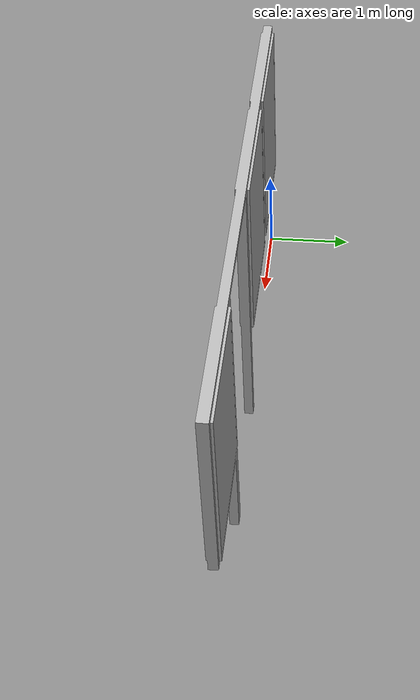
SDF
?xml version="1.0"?>

<sdf version="1.6">
  <model name='windows_door'>
    <static>true</static>
    <link name="body">

        <visual name="visual">
          <geometry>
            <mesh><uri>model://models/windows_door_open/meshes/windows_door_open.dae</uri></mesh>
          </geometry>
        </visual>

        <collision name="collision">
          <geometry>
            <mesh><uri>model://models/windows_door_open/meshes/windows_door_open.dae</uri></mesh>
          </geometry>
        </collision>

    </link>
  </model>
</sdf>
